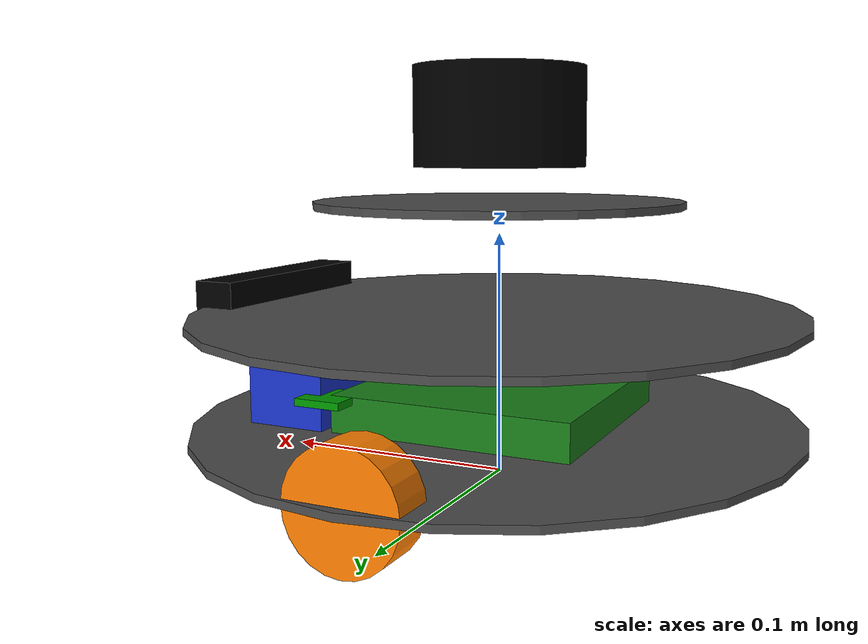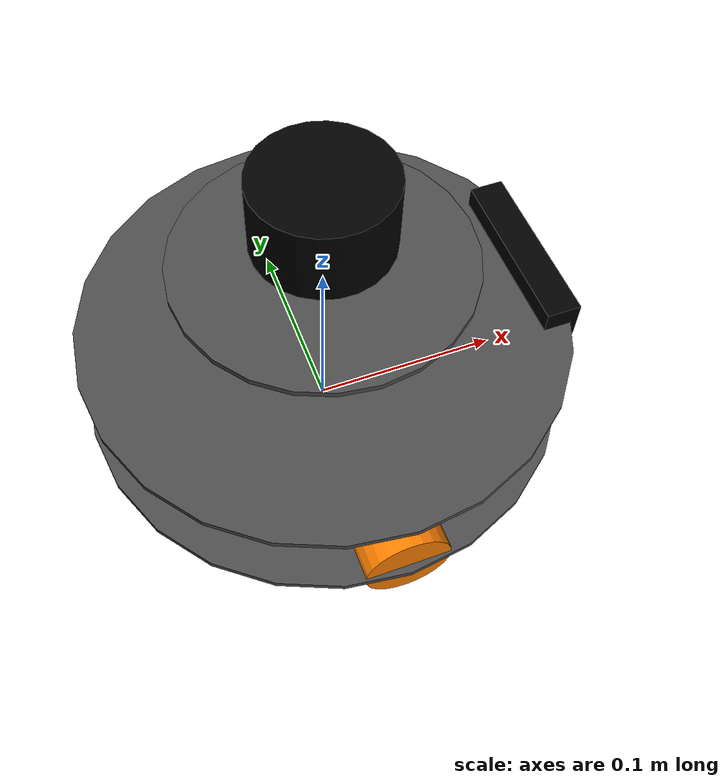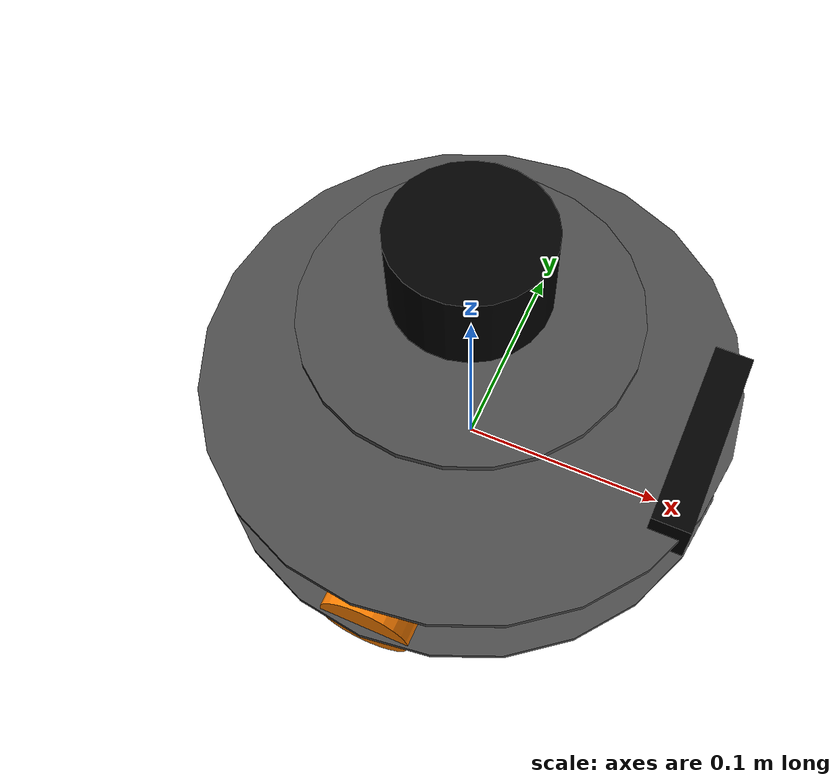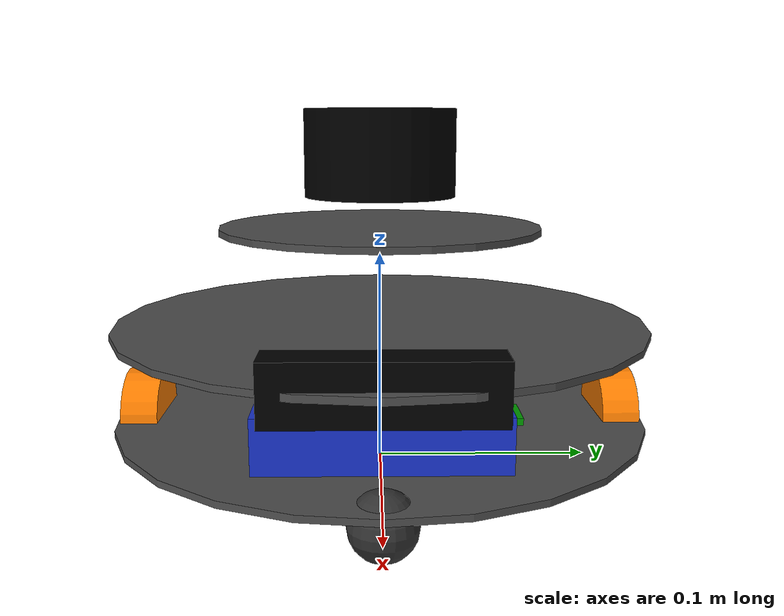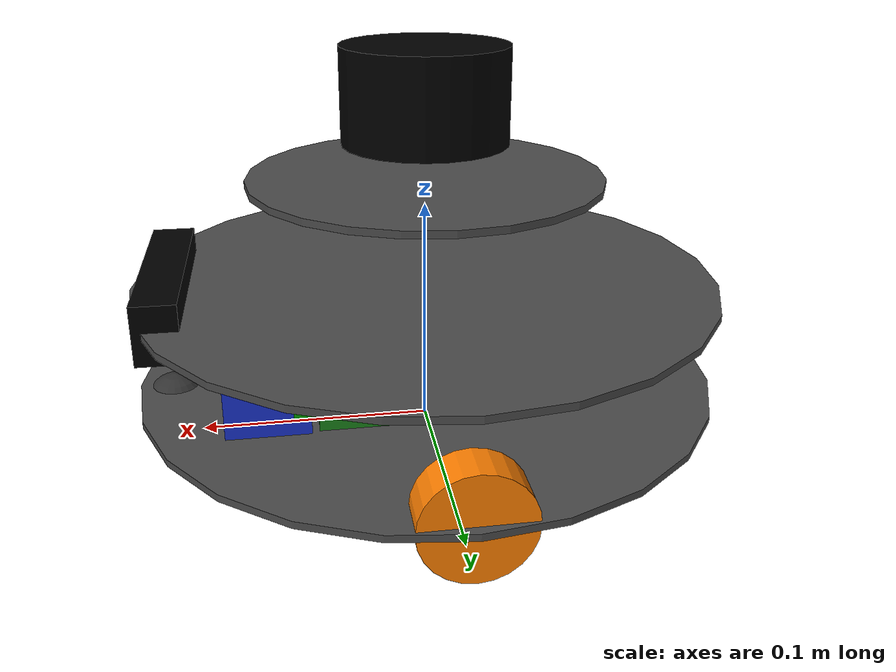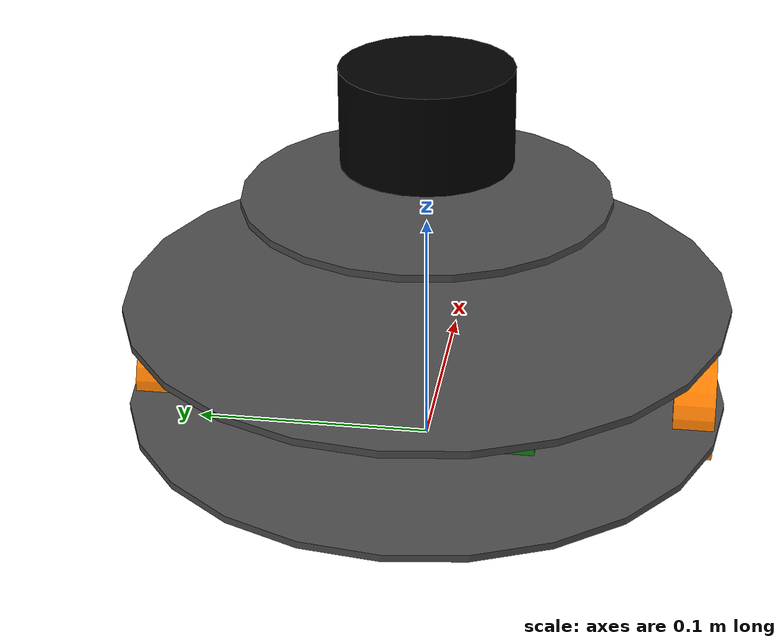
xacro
<?xml version="1.0"?>
<robot xmlns:xacro="http://www.ros.org/wiki/xacro" name="idefix">

  <!-- ===== MEASURED on the real parts (calipers) ===== -->
  <xacro:property name="wheel_radius"  value="0.022"/>   <!-- 44 mm dia -->
  <xacro:property name="wheel_width"   value="0.017"/>
  <xacro:property name="track_width"   value="0.225"/>   <!-- measured wheel centre to wheel centre on the assembly; = plugin wheel_separation. Firmware WHEEL_BASE_M uses the effective 0.230 (tire scrub) -->

  <!-- ===== CHASSIS (radius is corrected diameter/2; confirm after measuring motor length) ===== -->
  <xacro:property name="base_radius"    value="0.125"/>  <!-- ~250 mm plate -->
  <xacro:property name="floor_thickness" value="0.003"/>
  <xacro:property name="floor_gap"      value="0.045"/>  <!-- placeholder; tallest floor-1 item sets this -->

  <!-- ===== CASTER (single front, placeholder; height must equal wheel_radius) ===== -->
  <xacro:property name="caster_radius"  value="0.014"/>
  <xacro:property name="caster_offset_x" value="0.110"/> <!-- TODO finalize -->

  <!-- ===== MASSES (weigh each on a kitchen scale before Gazebo) ===== -->
  <xacro:property name="base_mass"   value="0.450"/>   <!-- three PLA floors + standoffs -->
  <xacro:property name="wheel_mass"  value="0.018"/>
  <xacro:property name="caster_mass" value="0.037"/>
  <xacro:property name="lidar_mass"  value="0.110"/>
  <xacro:property name="camera_mass" value="0.063"/>
  <xacro:property name="pcb_mass"  value="0.086"/>  <!-- PCB + ESP32 + IMU assembly -->
  <xacro:property name="lipo_mass" value="0.174"/>  <!-- 3S LiPo -->

  <!-- ===== inertia macros (will move to inertial_macros.xacro later) ===== -->
  <xacro:macro name="cylinder_inertia" params="m r h">
    <inertia ixx="${(1.0/12.0)*m*(3*r*r + h*h)}" ixy="0" ixz="0"
             iyy="${(1.0/12.0)*m*(3*r*r + h*h)}" iyz="0"
             izz="${0.5*m*r*r}"/>
  </xacro:macro>
  <xacro:macro name="sphere_inertia" params="m r">
    <inertia ixx="${(2.0/5.0)*m*r*r}" ixy="0" ixz="0"
             iyy="${(2.0/5.0)*m*r*r}" iyz="0" izz="${(2.0/5.0)*m*r*r}"/>
  </xacro:macro>
  <xacro:macro name="box_inertia" params="m x y z">
    <inertia ixx="${(1.0/12.0)*m*(y*y + z*z)}" ixy="0" ixz="0"
             iyy="${(1.0/12.0)*m*(x*x + z*z)}" iyz="0"
             izz="${(1.0/12.0)*m*(x*x + y*y)}"/>
  </xacro:macro>

  <!-- ===== frames ===== -->
  <link name="base_footprint"/>

  <joint name="base_joint" type="fixed">
    <parent link="base_footprint"/>
    <child link="base_link"/>
    <origin xyz="0 0 ${wheel_radius}" rpy="0 0 0"/>  <!-- base_link at axle height = rotation centre -->
  </joint>

  <!-- base_link carries all three floors as visuals; sensors mount to base_link -->
  <link name="base_link">
    <!-- floor 1 -->
    <visual>
      <origin xyz="0 0 0"/>
      <geometry><cylinder radius="${base_radius}" length="${floor_thickness}"/></geometry>
      <material name="grey"><color rgba="0.3 0.3 0.3 1"/></material>
    </visual>
    <collision>
      <origin xyz="0 0 0"/>
      <geometry><cylinder radius="${base_radius}" length="${floor_thickness}"/></geometry>
    </collision>
    <!-- floor 2 -->
    <visual>
      <origin xyz="0 0 ${floor_gap}"/>
      <geometry><cylinder radius="${base_radius}" length="${floor_thickness}"/></geometry>
      <material name="grey"/>
    </visual>
    <collision>
      <origin xyz="0 0 ${floor_gap}"/>
      <geometry><cylinder radius="${base_radius}" length="${floor_thickness}"/></geometry>
    </collision>
    <!-- floor 3 (smaller, lidar deck) -->
    <visual>
      <origin xyz="0 0 ${2*floor_gap}"/>
      <geometry><cylinder radius="${base_radius*0.6}" length="${floor_thickness}"/></geometry>
      <material name="grey"/>
    </visual>
    <collision>
      <origin xyz="0 0 ${2*floor_gap}"/>
      <geometry><cylinder radius="${base_radius*0.6}" length="${floor_thickness}"/></geometry>
    </collision>
    <inertial>
      <origin xyz="0 0 ${floor_gap}"/>
      <mass value="${base_mass}"/>
      <xacro:cylinder_inertia m="${base_mass}" r="${base_radius}" h="${2*floor_gap}"/>
    </inertial>
  </link>

  <!-- ===== wheels (continuous, axis y, tipped onto y) ===== -->
  <xacro:macro name="wheel" params="prefix y_sign">
    <link name="${prefix}_wheel">
      <visual>
        <origin xyz="0 0 0" rpy="${pi/2} 0 0"/>
        <geometry><cylinder radius="${wheel_radius}" length="${wheel_width}"/></geometry>
        <material name="orange"><color rgba="1 0.5 0 1"/></material>
      </visual>
      <collision>
        <origin xyz="0 0 0" rpy="${pi/2} 0 0"/>
        <geometry><cylinder radius="${wheel_radius}" length="${wheel_width}"/></geometry>
      </collision>
      <inertial>
        <origin xyz="0 0 0" rpy="${pi/2} 0 0"/>
        <mass value="${wheel_mass}"/>
        <xacro:cylinder_inertia m="${wheel_mass}" r="${wheel_radius}" h="${wheel_width}"/>
      </inertial>
    </link>
    <joint name="${prefix}_wheel_joint" type="continuous">
      <parent link="base_link"/>
      <child link="${prefix}_wheel"/>
      <origin xyz="0 ${y_sign*track_width/2} 0" rpy="0 0 0"/>
      <axis xyz="0 1 0"/>
    </joint>
  </xacro:macro>

  <xacro:wheel prefix="left"  y_sign="1"/>
  <xacro:wheel prefix="right" y_sign="-1"/>

  <!-- ===== front caster (placeholder single; enable rear block if lab has a second) ===== -->
  <link name="front_caster">
    <visual>
      <geometry><sphere radius="${caster_radius}"/></geometry>
      <material name="darkgrey"><color rgba="0.2 0.2 0.2 1"/></material>
    </visual>
    <collision><geometry><sphere radius="${caster_radius}"/></geometry></collision>
    <inertial>
      <mass value="${caster_mass}"/>
      <xacro:sphere_inertia m="${caster_mass}" r="${caster_radius}"/>
    </inertial>
  </link>
  <joint name="front_caster_joint" type="fixed">
    <parent link="base_link"/>
    <child link="front_caster"/>
    <origin xyz="${caster_offset_x} 0 ${caster_radius - wheel_radius}" rpy="0 0 0"/>
  </joint>

<!-- ===== floor-1 masses (modelled low for an honest CoM); Exact x,y pending CAD ===== -->
<link name="lipo_link">
    <visual>
      <geometry><box size="0.034 0.105 0.024"/></geometry>
      <material name="blue"><color rgba="0.1 0.2 0.8 1"/></material>
    </visual>
    <inertial>
      <mass value="${lipo_mass}"/>
      <xacro:box_inertia m="${lipo_mass}" x="0.034" y="0.105" z="0.024"/>
    </inertial>
  </link>
  <joint name="lipo_joint" type="fixed">
    <parent link="base_link"/>
    <child link="lipo_link"/>
    <origin xyz="0.07 0 0.014" rpy="0 0 0"/>  <!-- forward, low, on floor 1 -->
  </joint>

  <!-- PCB assembly (100x100), central between the motors, on floor 1 -->
  <link name="pcb_link">
    <visual>
      <geometry><box size="0.100 0.100 0.015"/></geometry>
      <material name="pcbgreen"><color rgba="0.1 0.5 0.1 1"/></material>
    </visual>
    <inertial>
      <mass value="${pcb_mass}"/>
      <xacro:box_inertia m="${pcb_mass}" x="0.100" y="0.100" z="0.015"/>
    </inertial>
  </link>
  <joint name="pcb_joint" type="fixed">
    <parent link="base_link"/>
    <child link="pcb_link"/>
    <origin xyz="0 0 0.009" rpy="0 0 0"/>  <!-- central, low, on floor 1 -->
  </joint>

  <!-- ===== sensors (all referenced to base_link) ===== -->
  <link name="laser">
    <visual>
      <geometry><cylinder radius="0.035" length="0.04"/></geometry>
      <material name="black"><color rgba="0 0 0 1"/></material>
    </visual>
    <inertial>
      <mass value="0.001"/>
      <inertia ixx="1e-7" ixy="0" ixz="0" iyy="1e-7" iyz="0" izz="1e-7"/>
    </inertial>
  </link>
  <joint name="lidar_joint" type="fixed">
    <parent link="base_link"/>
    <child link="laser"/>
    <origin xyz="0 0 0.125" rpy="0 0 -0.1414"/>
  </joint>

  <link name="camera_link">
    <visual>
      <geometry><box size="0.018 0.091 0.025"/></geometry>
      <material name="black"/>
    </visual>
    <inertial>
      <mass value="0.001"/>
      <inertia ixx="1e-7" ixy="0" ixz="0" iyy="1e-7" iyz="0" izz="1e-7"/>
    </inertial>
  </link>
  <joint name="camera_joint" type="fixed">
    <parent link="base_link"/>
    <child link="camera_link"/>
    <origin xyz="${base_radius - 0.015} 0 ${floor_gap}" rpy="0 0 0"/> <!-- front edge, floor 2 -->
  </joint>

  <link name="imu_link">
    <visual>
      <geometry><box size="0.02 0.02 0.003"/></geometry>
      <material name="green"><color rgba="0 0.6 0 1"/></material>
    </visual>
    <inertial>
      <mass value="0.001"/> <!-- Mass already included in the PCB -->
      <inertia ixx="1e-7" ixy="0" ixz="0" iyy="1e-7" iyz="0" izz="1e-7"/>
    </inertial>
  </link>
  <joint name="imu_joint" type="fixed">
    <parent link="base_link"/>
    <child link="imu_link"/>
    <origin xyz="0.05 0.05 0.015" rpy="0 0 0"/> <!-- TODO measure posotion on the PCB, floor 1 -->
  </joint>
  <xacro:include filename="idefix.gazebo.xacro"/>

</robot>
